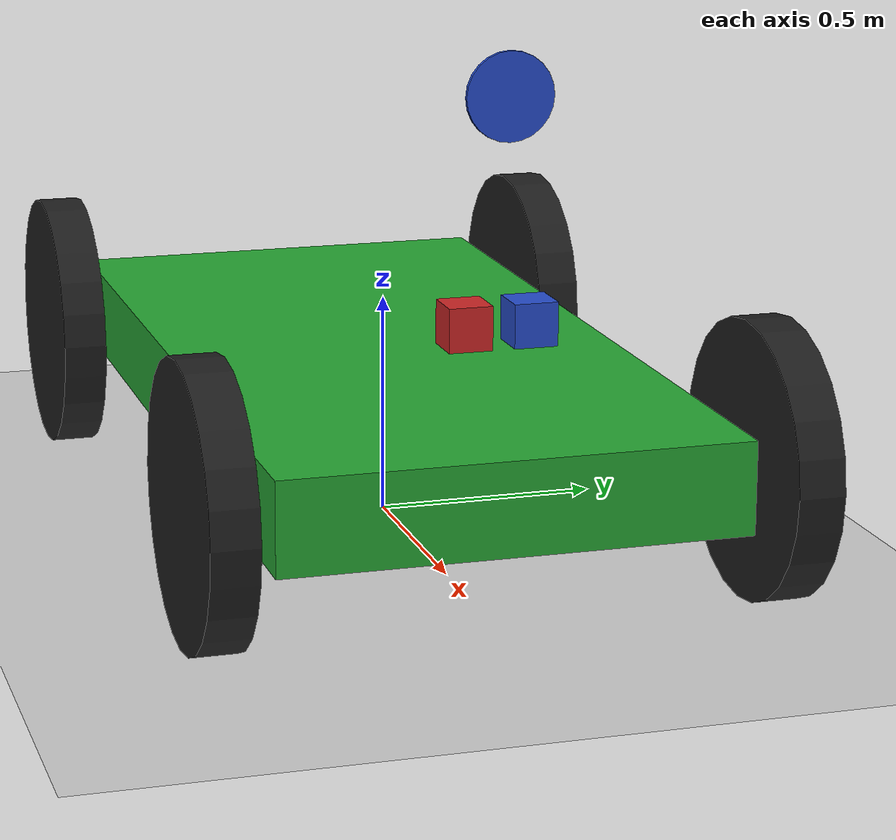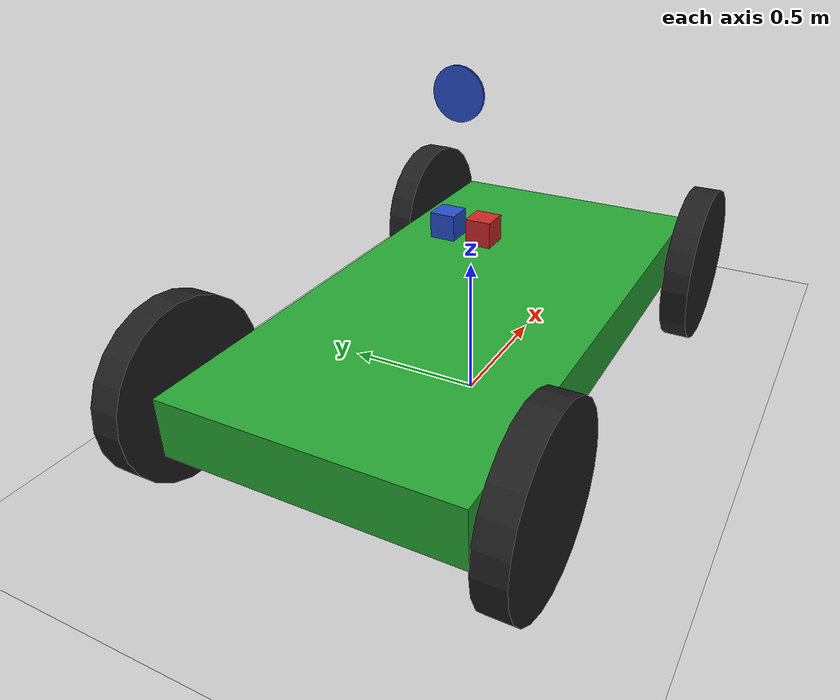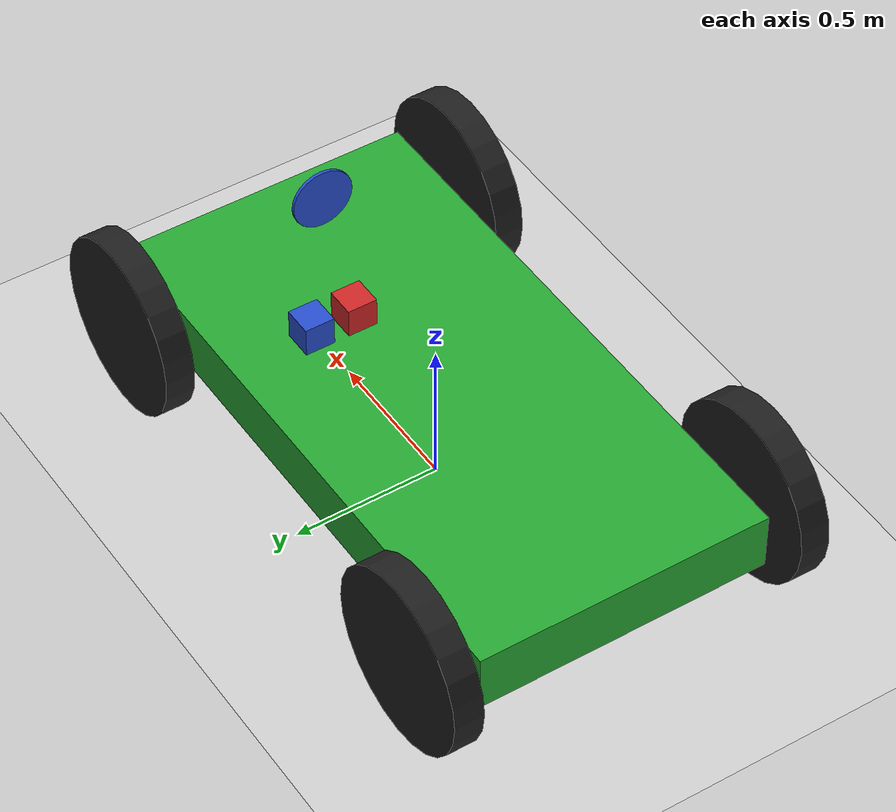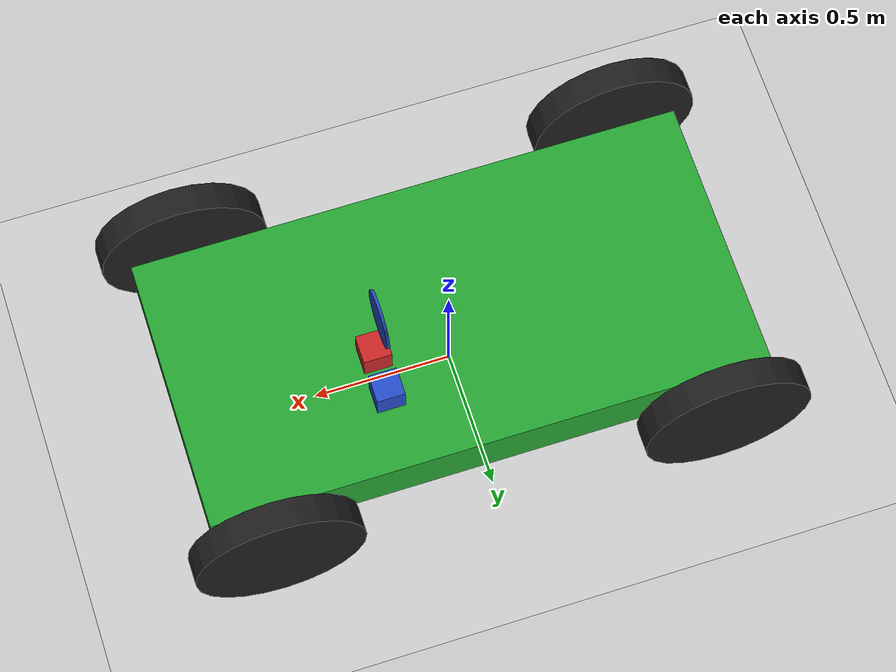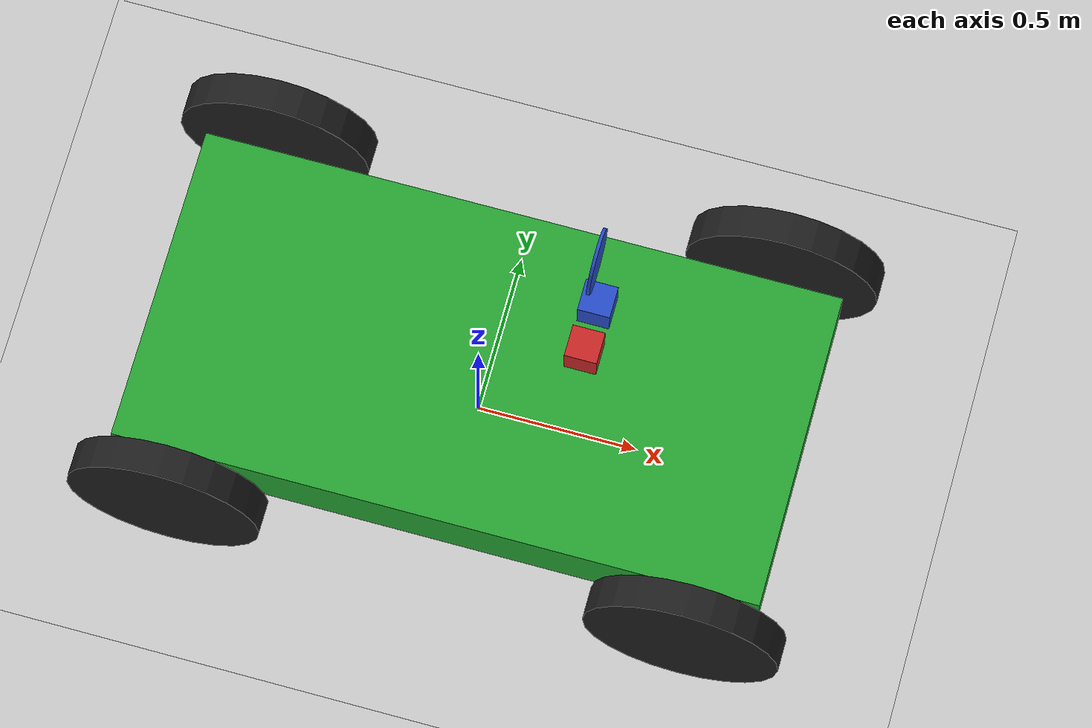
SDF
<?xml version="1.0" ?>
<sdf version="1.4">
  <!-- We use a custom world for the rrbot so that the camera angle is launched correctly -->

  <world name="default">
    <include>
      <uri>model://ground_plane</uri>
    </include>

    <!-- Global light source -->
    <include>
      <uri>model://sun</uri>
    </include>

    <include>
        <uri>model://rover</uri>
    </include>

    <plugin name="rover_sitl_gazebo_plugin" filename=" libardupilot_sitl_gazebo_plugin.so">
      <UAV_MODEL>rover</UAV_MODEL>
      <front_left>rover::front_left_joint</front_left>
      <front_right>rover::front_right_joint</front_right>
      <back_left>rover::back_left_joint</back_left>
      <back_right>rover::back_right_joint</back_right>
      <gas>rover::gas_joint</gas>
      <brake>rover::brake_joint</brake>
      <steering>rover::steering_joint</steering>
      <front_power>10</front_power>
      <rear_power>10</rear_power>
      <tire_angle_range>0.5</tire_angle_range>
      <max_speed>10</max_speed>
      <aero_load>0.1</aero_load>
    </plugin>

  </world>
</sdf>

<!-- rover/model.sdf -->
<sdf version="1.5">
  <model name="rover">
    <link name="chassis">
      <pose>0 0 0.3 0 0 0</pose>
      <collision name="collision">
        <geometry>
          <box>
            <size>2.0 1.0 0.2</size>
          </box>
        </geometry>
      </collision>
      <visual name="visual">
        <geometry>
          <box>
            <size>2.0 1.0 0.2</size>
          </box>
        </geometry>
        <material>
          <script>
            <uri>file://media/materials/scripts/gazebo.material</uri>
            <name>Gazebo/Green</name>
          </script>
        </material>
      </visual>
    </link>
    <link name="front_left_wheel">
      <pose>0.8 0.6 0.3 0 1.5707 1.5707</pose>
      <collision name="collision">
        <geometry>
          <cylinder>
            <radius>0.3</radius>
            <length>0.1</length>
          </cylinder>
        </geometry>
      </collision>
      <visual name="visual">
        <geometry>
          <cylinder>
            <radius>0.3</radius>
            <length>0.1</length>
          </cylinder>
        </geometry>
        <material>
          <script>
            <uri>file://media/materials/scripts/gazebo.material</uri>
            <name>Gazebo/Black</name>
          </script>
        </material>
      </visual>
    </link>
    <link name="front_right_wheel">
      <pose>0.8 -0.6 0.3 0 1.5707 1.5707</pose>
      <collision name="collision">
        <geometry>
          <cylinder>
            <radius>0.3</radius>
            <length>0.1</length>
          </cylinder>
        </geometry>
      </collision>
      <visual name="visual">
        <geometry>
          <cylinder>
            <radius>0.3</radius>
            <length>0.1</length>
          </cylinder>
        </geometry>
        <material>
          <script>
            <uri>file://media/materials/scripts/gazebo.material</uri>
            <name>Gazebo/Black</name>
          </script>
        </material>
      </visual>
    </link>
    <link name="back_right_wheel">
      <pose>-0.8 -0.6 0.3 0 1.5707 1.5707</pose>
      <collision name="collision">
        <geometry>
          <cylinder>
            <radius>0.3</radius>
            <length>0.1</length>
          </cylinder>
        </geometry>
      </collision>
      <visual name="visual">
        <geometry>
          <cylinder>
            <radius>0.3</radius>
            <length>0.1</length>
          </cylinder>
        </geometry>
        <material>
          <script>
            <uri>file://media/materials/scripts/gazebo.material</uri>
            <name>Gazebo/Black</name>
          </script>
        </material>
      </visual>
    </link>
    <link name="back_left_wheel">
      <pose>-0.8 0.6 0.3 0 1.5707 1.5707</pose>
      <collision name="collision">
        <geometry>
          <cylinder>
            <radius>0.3</radius>
            <length>0.1</length>
          </cylinder>
        </geometry>
      </collision>
      <visual name="visual">
        <geometry>
          <cylinder>
            <radius>0.3</radius>
            <length>0.1</length>
          </cylinder>
        </geometry>
        <material>
          <script>
            <uri>file://media/materials/scripts/gazebo.material</uri>
            <name>Gazebo/Black</name>
          </script>
        </material>
      </visual>
    </link>
    <link name="gas_pedal">
      <pose>0.3 0.1 0.5 0 0 0</pose>
      <collision name="collision">
        <geometry>
          <box>
            <size>0.1 0.1 0.1</size>
          </box>
        </geometry>
      </collision>
      <visual name="visual">
        <geometry>
          <box>
            <size>0.1 0.1 0.1</size>
          </box>
        </geometry>
        <material>
          <script>
            <uri>file://media/materials/scripts/gazebo.material</uri>
            <name>Gazebo/Red</name>
          </script>
        </material>
      </visual>
    </link>
    <link name="brake_pedal">
      <pose>0.3 0.25 0.5 0 0 0</pose>
      <collision name="collision">
        <geometry>
          <box>
            <size>0.1 0.1 0.1</size>
          </box>
        </geometry>
      </collision>
      <visual name="visual">
        <geometry>
          <box>
            <size>0.1 0.1 0.1</size>
          </box>
        </geometry>
        <material>
          <script>
            <uri>file://media/materials/scripts/gazebo.material</uri>
            <name>Gazebo/Blue</name>
          </script>
        </material>
      </visual>
    </link>
    <link name="steering_wheel">
      <pose>0.3 0.2 1.0 0 1.5707 0</pose>
      <collision name="collision">
        <geometry>
          <cylinder>
            <radius>0.1</radius>
            <length>0.01</length>
          </cylinder>
        </geometry>
      </collision>
      <visual name="visual">
        <geometry>
          <cylinder>
            <radius>0.1</radius>
            <length>0.01</length>
          </cylinder>
        </geometry>
        <material>
          <script>
            <uri>file://media/materials/scripts/gazebo.material</uri>
            <name>Gazebo/Blue</name>
          </script>
        </material>
      </visual>
    </link>
    <joint type="prismatic" name="gas_joint">
      <parent>chassis</parent>
      <child>gas_pedal</child>
      <axis>
        <xyz>1 0 0</xyz>
        <limit>
          <lower>0</lower>
          <upper>0.2</upper>
        </limit>
        <use_parent_model_frame>true</use_parent_model_frame>
      </axis>
    </joint>
    <joint type="prismatic" name="brake_joint">
      <parent>chassis</parent>
      <child>brake_pedal</child>
      <axis>
        <xyz>1 0 0</xyz>
        <limit>
          <lower>0</lower>
          <upper>0.2</upper>
        </limit>
        <use_parent_model_frame>true</use_parent_model_frame>
      </axis>
    </joint>
    <joint type="revolute" name="steering_joint">
      <parent>chassis</parent>
      <child>steering_wheel</child>
      <axis>
        <xyz>1 0 0</xyz>
        <limit>
          <lower>-7.853</lower>
          <upper>7.853</upper>
        </limit>
        <use_parent_model_frame>true</use_parent_model_frame>
      </axis>
    </joint>
    <joint type="revolute2" name="front_left_joint">
      <parent>chassis</parent>
      <child>front_left_wheel</child>
      <axis>
        <xyz>0 0 1</xyz>
        <limit>
          <lower>0</lower>
          <upper>0</upper>
        </limit>
        <use_parent_model_frame>true</use_parent_model_frame>
      </axis>
      <axis2>
        <xyz>0 1 0</xyz>
        <use_parent_model_frame>true</use_parent_model_frame>
      </axis2>
      <physics>
        <ode>
          <limit>
            <cfm>0.0</cfm>
            <erp>0.9</erp>
          </limit>
        </ode>
      </physics>
    </joint>
    <joint type="revolute2" name="front_right_joint">
      <parent>chassis</parent>
      <child>front_right_wheel</child>
      <axis>
        <xyz>0 0 1</xyz>
        <limit>
          <lower>0</lower>
          <upper>0</upper>
        </limit>
        <use_parent_model_frame>true</use_parent_model_frame>
      </axis>
      <axis2>
        <xyz>0 1 0</xyz>
        <use_parent_model_frame>true</use_parent_model_frame>
      </axis2>
      <physics>
        <ode>
          <limit>
            <cfm>0.0</cfm>
            <erp>0.9</erp>
          </limit>
        </ode>
      </physics>
    </joint>
    <joint type="revolute2" name="back_right_joint">
      <parent>chassis</parent>
      <child>back_right_wheel</child>
      <axis>
        <xyz>0 0 1</xyz>
        <limit>
          <lower>0</lower>
          <upper>0</upper>
        </limit>
        <use_parent_model_frame>true</use_parent_model_frame>
      </axis>
      <axis2>
        <xyz>0 1 0</xyz>
        <use_parent_model_frame>true</use_parent_model_frame>
      </axis2>
      <physics>
        <ode>
          <limit>
            <cfm>0.0</cfm>
            <erp>0.9</erp>
          </limit>
        </ode>
      </physics>
    </joint>
    <joint type="revolute2" name="back_left_joint">
      <parent>chassis</parent>
      <child>back_left_wheel</child>
      <axis>
        <xyz>0 0 1</xyz>
        <limit>
          <lower>0</lower>
          <upper>0</upper>
        </limit>
        <use_parent_model_frame>true</use_parent_model_frame>
      </axis>
      <axis2>
        <xyz>0 1 0</xyz>
        <use_parent_model_frame>true</use_parent_model_frame>
      </axis2>
      <physics>
        <ode>
          <limit>
            <cfm>0.0</cfm>
            <erp>0.9</erp>
          </limit>
        </ode>
      </physics>
    </joint>

    <!-- IMU -->

    <link name="imu_link">
      <pose> 0 0 0.3 0 0 0</pose>
      <visual name="visual">
        <geometry>
          <box>
            <size>0.01 0.01 0.01</size>
          </box>
        </geometry>
        <material>
          <script>
            <uri>file://media/materials/scripts/gazebo.material</uri>
            <name>Gazebo/Black</name>
          </script>
        </material>
      </visual>
    </link>

    <joint name="imu_joint" type="revolute">
      <parent>chassis</parent>
      <child>imu_link</child>
      <axis>
        <xyz>0.05 0 0.15</xyz>
        <limit>
          <lower>0</lower>
          <upper>0</upper>
        </limit>
        <use_parent_model_frame>true</use_parent_model_frame>
      </axis>
    </joint>

    <plugin name ="gps_sim" filename="libhector_gazebo_ros_gps.so">
      <alwaysOn>true</alwaysOn>
      <topicName>/rover/fix</topicName>
      <velocityTopicName>/rover/fix_velocity</velocityTopicName>
      <referenceLatitude>-35.363261</referenceLatitude>
      <referenceLongitude>149.165230</referenceLongitude>
      <referenceHeading>0</referenceHeading>
      <referenceAltitude>584</referenceAltitude>

      <!-- Sensor errors model for GPS Position measures -->
      <!-- Units: [m], and [1/s] for drift frequency -->
      <!-- For now, use Ardupilot's internal error models -->
      <offset>0 0 0</offset>
      <drift>0 0 0</drift>
      <driftFrequency>0 0 0</driftFrequency>
      <gaussianNoise>0 0 0</gaussianNoise>
      <scaleError>1 1 1</scaleError>

      <!-- Note:
       For the moment there is no barometer, so axis Z of the GPS is
       used as a barometer sensor (with the according error model) -->

      <!-- Sensor errors model for GPS Velocity measures -->
      <!-- Units: [m/s], and [1/s] for drift frequency -->
      <!-- For now, use Ardupilot's internal error models -->
      <velocityOffset>0 0 0</velocityOffset>
      <velocityDrift>0 0 0</velocityDrift>
      <velocityDriftFrequency>0 0 0</velocityDriftFrequency>
      <velocityGaussianNoise>0 0 0</velocityGaussianNoise>
      <velocityScaleError>1 1 1</velocityScaleError>

      <!-- Note:
        The velocity Z does not really make sense, it is not used by
        Ardupilot (right?).
        However Z velocity drift is added to the Z position drift. -->

    </plugin>

    <plugin name="rover_imu_sim" filename="libhector_gazebo_ros_imu.so">
      <updateRate>100.0</updateRate>
      <bodyName>imu_link</bodyName>
      <topicName>/rover/ground_truth/imu</topicName>
      <rpyOffset>0 0 0</rpyOffset>
      <gaussianNoise>0</gaussianNoise>
      <accelDrift>0.5 0.5 0.5</accelDrift>
      <accelGaussianNoise>0.35 0.35 0.3</accelGaussianNoise>
      <rateDrift>0.1 0.1 0.1</rateDrift>
      <rateGaussianNoise>0.05 0.05 0.015</rateGaussianNoise>
      <headingDrift>0.1</headingDrift>
      <headingGaussianNoise>0.05</headingGaussianNoise>
    </plugin>
  </model>
</sdf>
